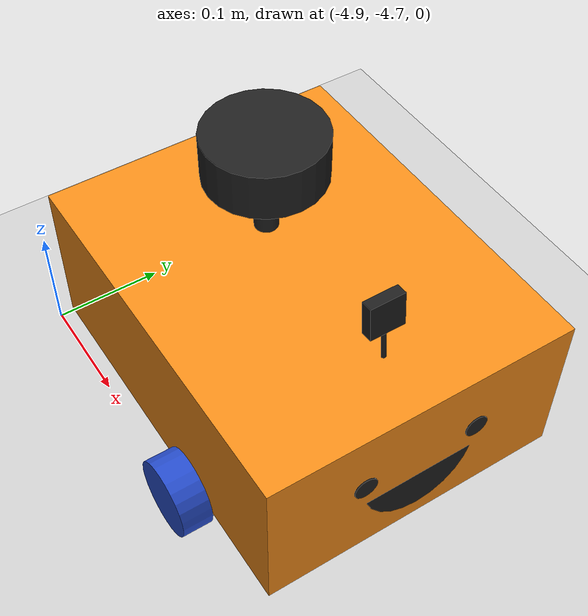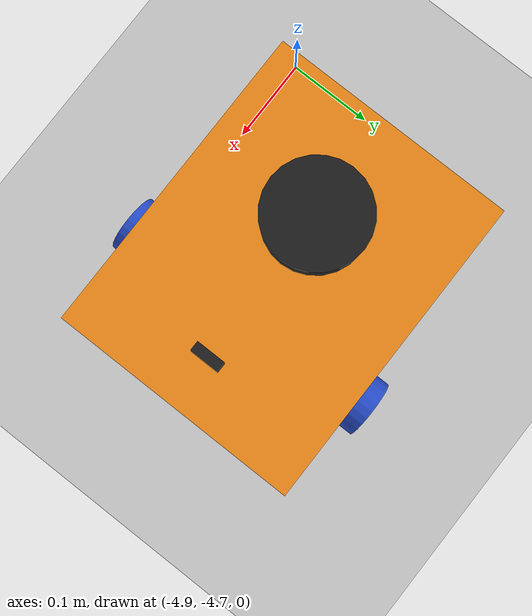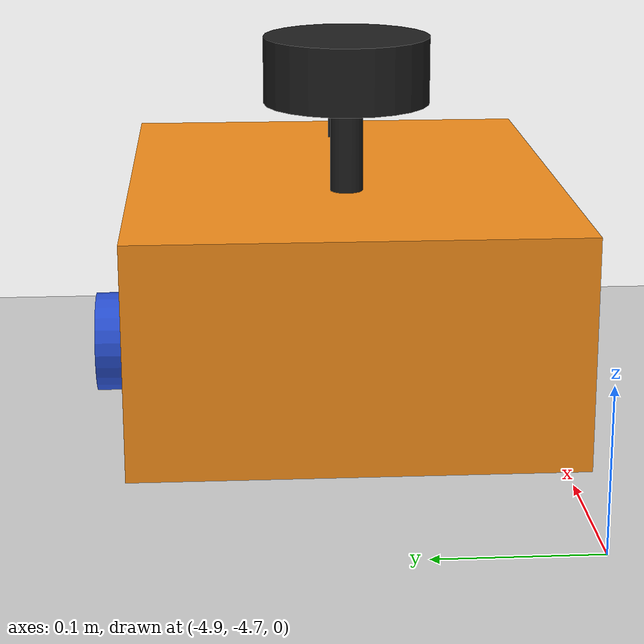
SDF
<sdf version="1.7">
 <world name="default">
  <model name="ground_plane">
   <static>1</static>
   <link name="link">
    <collision name="collision">
     <geometry><plane><normal>0 0 1</normal><size>100 100</size></plane></geometry>
     <surface><friction><ode><mu>100</mu><mu2>50</mu2></ode></friction></surface>
    </collision>
    <visual name="visual">
     <cast_shadows>0</cast_shadows>
     <geometry><plane><normal>0 0 1</normal><size>100 100</size></plane></geometry>
     <material>
      <script><uri>file://media/materials/scripts/gazebo.material</uri><name>Gazebo/Grey</name></script>
     </material>
    </visual>
   </link>
  </model>
  <model name="my_bot">
   <link name="base_link">
    <inertial>
     <pose>-0.067475 0 0.081098 0 -0 0</pose>
     <mass>0.61</mass>
     <inertia>
      <ixx>0.00561003</ixx>
      <ixy>0</ixy>
      <ixz>0.000453811</ixz>
      <iyy>0.00760348</iyy>
      <iyz>0</iyz>
      <izz>0.00797093</izz>
     </inertia>
    </inertial>
    <collision name="base_link_fixed_joint_lump__chassis_collision">
     <pose>-0.0585 0 0.059 0 -0 0</pose>
     <geometry><box><size>0.335 0.265 0.138</size></box></geometry>
    </collision>
    <collision name="base_link_fixed_joint_lump__caster_wheel_collision_1">
     <pose>-0.151 0 -0.023 0 -0 0</pose>
     <geometry><sphere><radius>0.01</radius></sphere></geometry>
     <surface><friction><ode><mu>0.001</mu><mu2>0.001</mu2></ode></friction></surface>
    </collision>
    <collision name="base_link_fixed_joint_lump__laser_frame_collision_2">
     <pose>-0.104 0 0.202 0 -0 0</pose>
     <geometry><cylinder><length>0.04</length><radius>0.05</radius></cylinder></geometry>
    </collision>
    <visual name="base_link_fixed_joint_lump__chassis_visual">
     <pose>-0.0585 0 0.059 0 -0 0</pose>
     <geometry><box><size>0.335 0.265 0.138</size></box></geometry>
     <material>
      <script><name>Gazebo/Orange</name><uri>file://media/materials/scripts/gazebo.material</uri></script>
     </material>
    </visual>
    <visual name="base_link_fixed_joint_lump__camera_link_visual_1">
     <pose>0.05 0 0.171 0 -0.1 0</pose>
     <geometry><box><size>0.01 0.03 0.03</size></box></geometry>
     <material>
      <script><name>Gazebo/Black</name><uri>file://media/materials/scripts/gazebo.material</uri></script>
     </material>
    </visual>
    <visual name="base_link_fixed_joint_lump__camera_link_visual_2">
     <pose>0.054992 0 0.12125 0 -0.1 0</pose>
     <geometry><cylinder><length>0.1</length><radius>0.002</radius></cylinder></geometry>
     <material>
      <script><name>Gazebo/Black</name><uri>file://media/materials/scripts/gazebo.material</uri></script>
     </material>
    </visual>
    <visual name="base_link_fixed_joint_lump__caster_wheel_visual_3">
     <pose>-0.151 0 -0.023 0 -0 0</pose>
     <geometry><sphere><radius>0.01</radius></sphere></geometry>
     <material>
      <script><name>Gazebo/White</name><uri>file://media/materials/scripts/gazebo.material</uri></script>
     </material>
    </visual>
    <visual name="base_link_fixed_joint_lump__face_link_visual_4">
     <pose>0.109 0.05 0.069 3.14159 1.57079 3.14159</pose>
     <geometry><cylinder><length>0.002</length><radius>0.01</radius></cylinder></geometry>
     <material>
      <script><name>Gazebo/Black</name><uri>file://media/materials/scripts/gazebo.material</uri></script>
     </material>
    </visual>
    <visual name="base_link_fixed_joint_lump__face_link_visual_5">
     <pose>0.109 -0.05 0.069 3.14159 1.57079 3.14159</pose>
     <geometry><cylinder><length>0.002</length><radius>0.01</radius></cylinder></geometry>
     <material>
      <script><name>Gazebo/Black</name><uri>file://media/materials/scripts/gazebo.material</uri></script>
     </material>
    </visual>
    <visual name="base_link_fixed_joint_lump__face_link_visual_6">
     <pose>0.098 0 0.059 0 1.5 0</pose>
     <geometry><cylinder><length>0.02</length><radius>0.05</radius></cylinder></geometry>
     <material>
      <script><name>Gazebo/Black</name><uri>file://media/materials/scripts/gazebo.material</uri></script>
     </material>
    </visual>
    <visual name="base_link_fixed_joint_lump__laser_frame_visual_7">
     <pose>-0.104 0 0.202 0 -0 0</pose>
     <geometry><cylinder><length>0.04</length><radius>0.05</radius></cylinder></geometry>
     <material>
      <script><name>Gazebo/Black</name><uri>file://media/materials/scripts/gazebo.material</uri></script>
     </material>
    </visual>
    <visual name="base_link_fixed_joint_lump__laser_frame_visual_8">
     <pose>-0.104 0 0.152 0 -0 0</pose>
     <geometry><cylinder><length>0.1</length><radius>0.01</radius></cylinder></geometry>
     <material>
      <script><name>Gazebo/Black</name><uri>file://media/materials/scripts/gazebo.material</uri></script>
     </material>
    </visual>
    <sensor name="camera" type="camera">
     <visualize>1</visualize>
     <update_rate>10</update_rate>
     <camera>
      <horizontal_fov>1.089</horizontal_fov>
      <image><format>R8G8B8</format><width>640</width><height>480</height></image>
      <clip><near>0.05</near><far>8</far></clip>
     </camera>
     <plugin name="camera_controller" filename="libgazebo_ros_camera.so">
      <frame_name>camera_link_optical</frame_name>
     </plugin>
     <pose>0.05 0 0.171 0 -0.1 0</pose>
    </sensor>
    <sensor name="laser" type="ray">
     <visualize>0</visualize>
     <update_rate>10</update_rate>
     <ray>
      <scan>
       <horizontal>
        <samples>360</samples>
        <min_angle>-3.14</min_angle>
        <max_angle>3.14</max_angle>
        <resolution>1</resolution>
       </horizontal>
       <vertical><samples>1</samples><min_angle>0</min_angle><max_angle>0</max_angle></vertical>
      </scan>
      <range><min>0.3</min><max>12</max></range>
     </ray>
     <plugin name="laser_controller" filename="libgazebo_ros_ray_sensor.so">
      <ros><argument>~/out:=scan</argument></ros>
      <output_type>sensor_msgs/LaserScan</output_type>
      <frame_name>laser_frame</frame_name>
     </plugin>
     <pose>-0.104 0 0.202 0 -0 0</pose>
    </sensor>
   </link>
   <joint name="left_wheel_joint" type="revolute">
    <pose relative_to="base_link">0 0.1485 0 -1.5708 0 0</pose>
    <parent>base_link</parent>
    <child>left_wheel</child>
    <axis>
     <xyz>0 0 1</xyz>
     <limit><lower>-1e+16</lower><upper>1e+16</upper></limit>
     <dynamics><spring_reference>0</spring_reference><spring_stiffness>0</spring_stiffness></dynamics>
    </axis>
   </joint>
   <link name="left_wheel">
    <pose relative_to="left_wheel_joint">0 0 0 0 -0 0</pose>
    <inertial>
     <mass>0.05</mass>
     <inertia>
      <ixx>1.64292e-05</ixx>
      <ixy>0</ixy>
      <ixz>0</ixz>
      <iyy>1.64292e-05</iyy>
      <iyz>0</iyz>
      <izz>2.7225e-05</izz>
     </inertia>
    </inertial>
    <collision name="left_wheel_collision">
     <geometry><sphere><radius>0.033</radius></sphere></geometry>
    </collision>
    <visual name="left_wheel_visual">
     <geometry><cylinder><length>0.026</length><radius>0.033</radius></cylinder></geometry>
     <material>
      <script><name>Gazebo/Blue</name><uri>file://media/materials/scripts/gazebo.material</uri></script>
     </material>
    </visual>
   </link>
   <joint name="right_wheel_joint" type="revolute">
    <pose relative_to="base_link">0 -0.1485 0 1.5708 -0 0</pose>
    <parent>base_link</parent>
    <child>right_wheel</child>
    <axis>
     <xyz>0 0 -1</xyz>
     <limit><lower>-1e+16</lower><upper>1e+16</upper></limit>
     <dynamics><spring_reference>0</spring_reference><spring_stiffness>0</spring_stiffness></dynamics>
    </axis>
   </joint>
   <link name="right_wheel">
    <pose relative_to="right_wheel_joint">0 0 0 0 -0 0</pose>
    <inertial>
     <mass>0.05</mass>
     <inertia>
      <ixx>1.64292e-05</ixx>
      <ixy>0</ixy>
      <ixz>0</ixz>
      <iyy>1.64292e-05</iyy>
      <iyz>0</iyz>
      <izz>2.7225e-05</izz>
     </inertia>
    </inertial>
    <collision name="right_wheel_collision">
     <geometry><sphere><radius>0.033</radius></sphere></geometry>
    </collision>
    <visual name="right_wheel_visual">
     <geometry><cylinder><length>0.026</length><radius>0.033</radius></cylinder></geometry>
     <material>
      <script><name>Gazebo/Blue</name><uri>file://media/materials/scripts/gazebo.material</uri></script>
     </material>
    </visual>
   </link>
   <static>0</static>
   <plugin name="gazebo_ros2_control" filename="libgazebo_ros2_control.so">
    <parameters>/home/mta/nav_ws/install/articubot_one/share/articubot_one/config/my_controllers.yaml</parameters>
    <parameters>/home/mta/nav_ws/install/articubot_one/share/articubot_one/config/gaz_ros2_ctl_use_sim.yaml</parameters>
   </plugin>
   <pose>-4.64442 -4.56363 0.047997 1.8e-05 2e-05 -4.5e-05</pose>
  </model>
 </world>
</sdf>
